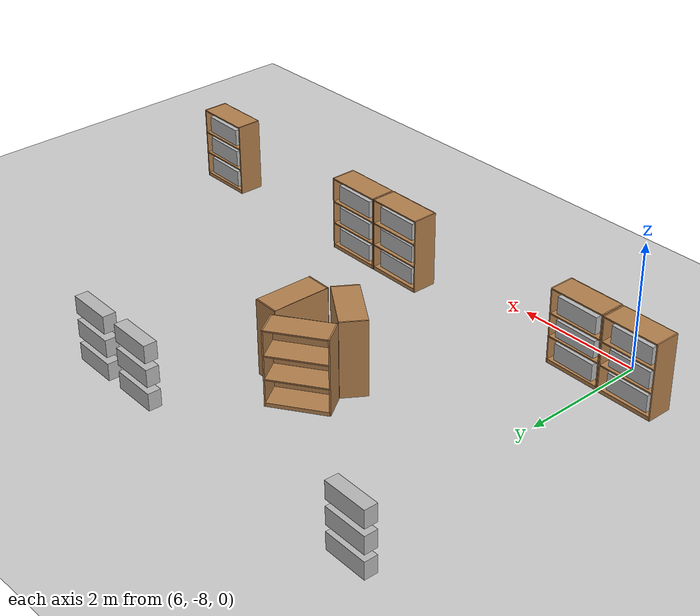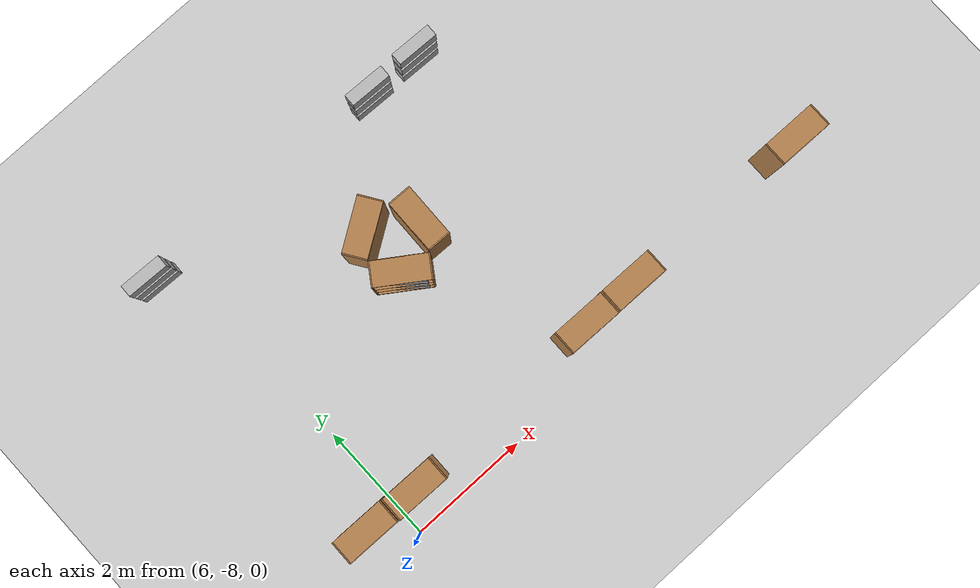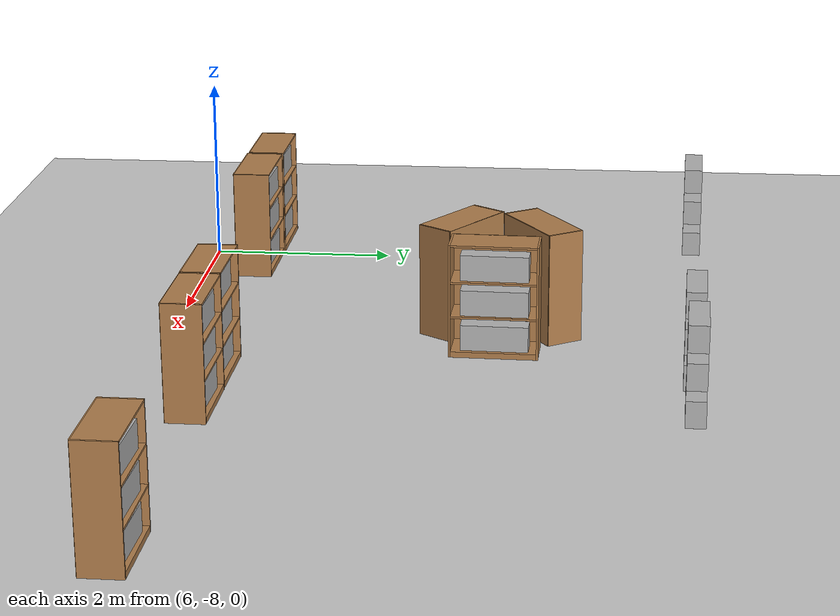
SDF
<sdf version="1.7">
 <world name="default">
  <model name="ground_plane">
   <static>1</static>
   <link name="link">
    <collision name="collision">
     <geometry><plane><normal>0 0 1</normal><size>100 100</size></plane></geometry>
     <surface><friction><ode><mu>100</mu><mu2>50</mu2></ode></friction></surface>
    </collision>
    <visual name="visual">
     <cast_shadows>0</cast_shadows>
     <geometry><plane><normal>0 0 1</normal><size>100 100</size></plane></geometry>
     <material>
      <script><uri>file://media/materials/scripts/gazebo.material</uri><name>Gazebo/Grey</name></script>
     </material>
    </visual>
   </link>
  </model>
  <model name="bookshelf_clone_clone">
   <static>1</static>
   <link name="link">
    <inertial><mass>1</mass></inertial>
    <collision name="back">
     <pose>0 0.005 0.6 0 -0 0</pose>
     <geometry><box><size>0.9 0.01 1.2</size></box></geometry>
    </collision>
    <visual name="visual1">
     <pose>0 0.005 0.6 0 -0 0</pose>
     <geometry><box><size>0.9 0.01 1.2</size></box></geometry>
     <material>
      <script><uri>file://media/materials/scripts/gazebo.material</uri><name>Gazebo/Wood</name></script>
     </material>
    </visual>
    <collision name="left_side">
     <pose>0.45 -0.195 0.6 0 -0 0</pose>
     <geometry><box><size>0.02 0.4 1.2</size></box></geometry>
    </collision>
    <visual name="visual2">
     <pose>0.45 -0.195 0.6 0 -0 0</pose>
     <geometry><box><size>0.02 0.4 1.2</size></box></geometry>
     <material>
      <script><uri>file://media/materials/scripts/gazebo.material</uri><name>Gazebo/Wood</name></script>
     </material>
    </visual>
    <collision name="right_side">
     <pose>-0.45 -0.195 0.6 0 -0 0</pose>
     <geometry><box><size>0.02 0.4 1.2</size></box></geometry>
    </collision>
    <visual name="visual3">
     <pose>-0.45 -0.195 0.6 0 -0 0</pose>
     <geometry><box><size>0.02 0.4 1.2</size></box></geometry>
     <material>
      <script><uri>file://media/materials/scripts/gazebo.material</uri><name>Gazebo/Wood</name></script>
     </material>
    </visual>
    <collision name="bottom">
     <pose>0 -0.195 0.03 0 -0 0</pose>
     <geometry><box><size>0.88 0.4 0.06</size></box></geometry>
    </collision>
    <visual name="visual4">
     <pose>0 -0.195 0.03 0 -0 0</pose>
     <geometry><box><size>0.88 0.4 0.06</size></box></geometry>
     <material>
      <script><uri>file://media/materials/scripts/gazebo.material</uri><name>Gazebo/Wood</name></script>
     </material>
    </visual>
    <collision name="top">
     <pose>0 -0.195 1.19 0 -0 0</pose>
     <geometry><box><size>0.88 0.4 0.02</size></box></geometry>
    </collision>
    <visual name="visual5">
     <pose>0 -0.195 1.19 0 -0 0</pose>
     <geometry><box><size>0.88 0.4 0.02</size></box></geometry>
     <material>
      <script><uri>file://media/materials/scripts/gazebo.material</uri><name>Gazebo/Wood</name></script>
     </material>
    </visual>
    <collision name="low_shelf">
     <pose>0 -0.195 0.43 0 -0 0</pose>
     <geometry><box><size>0.88 0.4 0.02</size></box></geometry>
    </collision>
    <visual name="visual6">
     <pose>0 -0.195 0.43 0 -0 0</pose>
     <geometry><box><size>0.88 0.4 0.02</size></box></geometry>
     <material>
      <script><uri>file://media/materials/scripts/gazebo.material</uri><name>Gazebo/Wood</name></script>
     </material>
    </visual>
    <collision name="high_shelf">
     <pose>0 -0.195 0.8 0 -0 0</pose>
     <geometry><box><size>0.88 0.4 0.02</size></box></geometry>
    </collision>
    <visual name="visual7">
     <pose>0 -0.195 0.8 0 -0 0</pose>
     <geometry><box><size>0.88 0.4 0.02</size></box></geometry>
     <material>
      <script><uri>file://media/materials/scripts/gazebo.material</uri><name>Gazebo/Wood</name></script>
     </material>
    </visual>
   </link>
   <pose>5.52396 -7.61033 0.012624 0 -0 3.13078</pose>
  </model>
  <model name="bookshelf_clone_clone_clone">
   <static>1</static>
   <link name="link">
    <inertial><mass>1</mass></inertial>
    <collision name="back">
     <pose>0 0.005 0.6 0 -0 0</pose>
     <geometry><box><size>0.9 0.01 1.2</size></box></geometry>
    </collision>
    <visual name="visual1">
     <pose>0 0.005 0.6 0 -0 0</pose>
     <geometry><box><size>0.9 0.01 1.2</size></box></geometry>
     <material>
      <script><uri>file://media/materials/scripts/gazebo.material</uri><name>Gazebo/Wood</name></script>
     </material>
    </visual>
    <collision name="left_side">
     <pose>0.45 -0.195 0.6 0 -0 0</pose>
     <geometry><box><size>0.02 0.4 1.2</size></box></geometry>
    </collision>
    <visual name="visual2">
     <pose>0.45 -0.195 0.6 0 -0 0</pose>
     <geometry><box><size>0.02 0.4 1.2</size></box></geometry>
     <material>
      <script><uri>file://media/materials/scripts/gazebo.material</uri><name>Gazebo/Wood</name></script>
     </material>
    </visual>
    <collision name="right_side">
     <pose>-0.45 -0.195 0.6 0 -0 0</pose>
     <geometry><box><size>0.02 0.4 1.2</size></box></geometry>
    </collision>
    <visual name="visual3">
     <pose>-0.45 -0.195 0.6 0 -0 0</pose>
     <geometry><box><size>0.02 0.4 1.2</size></box></geometry>
     <material>
      <script><uri>file://media/materials/scripts/gazebo.material</uri><name>Gazebo/Wood</name></script>
     </material>
    </visual>
    <collision name="bottom">
     <pose>0 -0.195 0.03 0 -0 0</pose>
     <geometry><box><size>0.88 0.4 0.06</size></box></geometry>
    </collision>
    <visual name="visual4">
     <pose>0 -0.195 0.03 0 -0 0</pose>
     <geometry><box><size>0.88 0.4 0.06</size></box></geometry>
     <material>
      <script><uri>file://media/materials/scripts/gazebo.material</uri><name>Gazebo/Wood</name></script>
     </material>
    </visual>
    <collision name="top">
     <pose>0 -0.195 1.19 0 -0 0</pose>
     <geometry><box><size>0.88 0.4 0.02</size></box></geometry>
    </collision>
    <visual name="visual5">
     <pose>0 -0.195 1.19 0 -0 0</pose>
     <geometry><box><size>0.88 0.4 0.02</size></box></geometry>
     <material>
      <script><uri>file://media/materials/scripts/gazebo.material</uri><name>Gazebo/Wood</name></script>
     </material>
    </visual>
    <collision name="low_shelf">
     <pose>0 -0.195 0.43 0 -0 0</pose>
     <geometry><box><size>0.88 0.4 0.02</size></box></geometry>
    </collision>
    <visual name="visual6">
     <pose>0 -0.195 0.43 0 -0 0</pose>
     <geometry><box><size>0.88 0.4 0.02</size></box></geometry>
     <material>
      <script><uri>file://media/materials/scripts/gazebo.material</uri><name>Gazebo/Wood</name></script>
     </material>
    </visual>
    <collision name="high_shelf">
     <pose>0 -0.195 0.8 0 -0 0</pose>
     <geometry><box><size>0.88 0.4 0.02</size></box></geometry>
    </collision>
    <visual name="visual7">
     <pose>0 -0.195 0.8 0 -0 0</pose>
     <geometry><box><size>0.88 0.4 0.02</size></box></geometry>
     <material>
      <script><uri>file://media/materials/scripts/gazebo.material</uri><name>Gazebo/Wood</name></script>
     </material>
    </visual>
   </link>
   <pose>6.45684 -7.62988 0.012624 0 -0 3.13078</pose>
  </model>
  <model name="bookshelf_clone_clone_clone_0">
   <static>1</static>
   <link name="link">
    <inertial><mass>1</mass></inertial>
    <collision name="back">
     <pose>0 0.005 0.6 0 -0 0</pose>
     <geometry><box><size>0.9 0.01 1.2</size></box></geometry>
    </collision>
    <visual name="visual1">
     <pose>0 0.005 0.6 0 -0 0</pose>
     <geometry><box><size>0.9 0.01 1.2</size></box></geometry>
     <material>
      <script><uri>file://media/materials/scripts/gazebo.material</uri><name>Gazebo/Wood</name></script>
     </material>
    </visual>
    <collision name="left_side">
     <pose>0.45 -0.195 0.6 0 -0 0</pose>
     <geometry><box><size>0.02 0.4 1.2</size></box></geometry>
    </collision>
    <visual name="visual2">
     <pose>0.45 -0.195 0.6 0 -0 0</pose>
     <geometry><box><size>0.02 0.4 1.2</size></box></geometry>
     <material>
      <script><uri>file://media/materials/scripts/gazebo.material</uri><name>Gazebo/Wood</name></script>
     </material>
    </visual>
    <collision name="right_side">
     <pose>-0.45 -0.195 0.6 0 -0 0</pose>
     <geometry><box><size>0.02 0.4 1.2</size></box></geometry>
    </collision>
    <visual name="visual3">
     <pose>-0.45 -0.195 0.6 0 -0 0</pose>
     <geometry><box><size>0.02 0.4 1.2</size></box></geometry>
     <material>
      <script><uri>file://media/materials/scripts/gazebo.material</uri><name>Gazebo/Wood</name></script>
     </material>
    </visual>
    <collision name="bottom">
     <pose>0 -0.195 0.03 0 -0 0</pose>
     <geometry><box><size>0.88 0.4 0.06</size></box></geometry>
    </collision>
    <visual name="visual4">
     <pose>0 -0.195 0.03 0 -0 0</pose>
     <geometry><box><size>0.88 0.4 0.06</size></box></geometry>
     <material>
      <script><uri>file://media/materials/scripts/gazebo.material</uri><name>Gazebo/Wood</name></script>
     </material>
    </visual>
    <collision name="top">
     <pose>0 -0.195 1.19 0 -0 0</pose>
     <geometry><box><size>0.88 0.4 0.02</size></box></geometry>
    </collision>
    <visual name="visual5">
     <pose>0 -0.195 1.19 0 -0 0</pose>
     <geometry><box><size>0.88 0.4 0.02</size></box></geometry>
     <material>
      <script><uri>file://media/materials/scripts/gazebo.material</uri><name>Gazebo/Wood</name></script>
     </material>
    </visual>
    <collision name="low_shelf">
     <pose>0 -0.195 0.43 0 -0 0</pose>
     <geometry><box><size>0.88 0.4 0.02</size></box></geometry>
    </collision>
    <visual name="visual6">
     <pose>0 -0.195 0.43 0 -0 0</pose>
     <geometry><box><size>0.88 0.4 0.02</size></box></geometry>
     <material>
      <script><uri>file://media/materials/scripts/gazebo.material</uri><name>Gazebo/Wood</name></script>
     </material>
    </visual>
    <collision name="high_shelf">
     <pose>0 -0.195 0.8 0 -0 0</pose>
     <geometry><box><size>0.88 0.4 0.02</size></box></geometry>
    </collision>
    <visual name="visual7">
     <pose>0 -0.195 0.8 0 -0 0</pose>
     <geometry><box><size>0.88 0.4 0.02</size></box></geometry>
     <material>
      <script><uri>file://media/materials/scripts/gazebo.material</uri><name>Gazebo/Wood</name></script>
     </material>
    </visual>
   </link>
   <pose>9.92381 -7.54197 0.012624 0 -0 3.13078</pose>
  </model>
  <model name="bookshelf_clone_clone_clone_1">
   <static>1</static>
   <link name="link">
    <inertial><mass>1</mass></inertial>
    <collision name="back">
     <pose>0 0.005 0.6 0 -0 0</pose>
     <geometry><box><size>0.9 0.01 1.2</size></box></geometry>
    </collision>
    <visual name="visual1">
     <pose>0 0.005 0.6 0 -0 0</pose>
     <geometry><box><size>0.9 0.01 1.2</size></box></geometry>
     <material>
      <script><uri>file://media/materials/scripts/gazebo.material</uri><name>Gazebo/Wood</name></script>
     </material>
    </visual>
    <collision name="left_side">
     <pose>0.45 -0.195 0.6 0 -0 0</pose>
     <geometry><box><size>0.02 0.4 1.2</size></box></geometry>
    </collision>
    <visual name="visual2">
     <pose>0.45 -0.195 0.6 0 -0 0</pose>
     <geometry><box><size>0.02 0.4 1.2</size></box></geometry>
     <material>
      <script><uri>file://media/materials/scripts/gazebo.material</uri><name>Gazebo/Wood</name></script>
     </material>
    </visual>
    <collision name="right_side">
     <pose>-0.45 -0.195 0.6 0 -0 0</pose>
     <geometry><box><size>0.02 0.4 1.2</size></box></geometry>
    </collision>
    <visual name="visual3">
     <pose>-0.45 -0.195 0.6 0 -0 0</pose>
     <geometry><box><size>0.02 0.4 1.2</size></box></geometry>
     <material>
      <script><uri>file://media/materials/scripts/gazebo.material</uri><name>Gazebo/Wood</name></script>
     </material>
    </visual>
    <collision name="bottom">
     <pose>0 -0.195 0.03 0 -0 0</pose>
     <geometry><box><size>0.88 0.4 0.06</size></box></geometry>
    </collision>
    <visual name="visual4">
     <pose>0 -0.195 0.03 0 -0 0</pose>
     <geometry><box><size>0.88 0.4 0.06</size></box></geometry>
     <material>
      <script><uri>file://media/materials/scripts/gazebo.material</uri><name>Gazebo/Wood</name></script>
     </material>
    </visual>
    <collision name="top">
     <pose>0 -0.195 1.19 0 -0 0</pose>
     <geometry><box><size>0.88 0.4 0.02</size></box></geometry>
    </collision>
    <visual name="visual5">
     <pose>0 -0.195 1.19 0 -0 0</pose>
     <geometry><box><size>0.88 0.4 0.02</size></box></geometry>
     <material>
      <script><uri>file://media/materials/scripts/gazebo.material</uri><name>Gazebo/Wood</name></script>
     </material>
    </visual>
    <collision name="low_shelf">
     <pose>0 -0.195 0.43 0 -0 0</pose>
     <geometry><box><size>0.88 0.4 0.02</size></box></geometry>
    </collision>
    <visual name="visual6">
     <pose>0 -0.195 0.43 0 -0 0</pose>
     <geometry><box><size>0.88 0.4 0.02</size></box></geometry>
     <material>
      <script><uri>file://media/materials/scripts/gazebo.material</uri><name>Gazebo/Wood</name></script>
     </material>
    </visual>
    <collision name="high_shelf">
     <pose>0 -0.195 0.8 0 -0 0</pose>
     <geometry><box><size>0.88 0.4 0.02</size></box></geometry>
    </collision>
    <visual name="visual7">
     <pose>0 -0.195 0.8 0 -0 0</pose>
     <geometry><box><size>0.88 0.4 0.02</size></box></geometry>
     <material>
      <script><uri>file://media/materials/scripts/gazebo.material</uri><name>Gazebo/Wood</name></script>
     </material>
    </visual>
   </link>
   <pose>10.8453 -7.5483 0.012624 0 -0 3.13078</pose>
  </model>
  <model name="bookshelf_clone_clone_clone_2">
   <static>1</static>
   <link name="link">
    <inertial><mass>1</mass></inertial>
    <collision name="back">
     <pose>0 0.005 0.6 0 -0 0</pose>
     <geometry><box><size>0.9 0.01 1.2</size></box></geometry>
    </collision>
    <visual name="visual1">
     <pose>0 0.005 0.6 0 -0 0</pose>
     <geometry><box><size>0.9 0.01 1.2</size></box></geometry>
     <material>
      <script><uri>file://media/materials/scripts/gazebo.material</uri><name>Gazebo/Wood</name></script>
     </material>
    </visual>
    <collision name="left_side">
     <pose>0.45 -0.195 0.6 0 -0 0</pose>
     <geometry><box><size>0.02 0.4 1.2</size></box></geometry>
    </collision>
    <visual name="visual2">
     <pose>0.45 -0.195 0.6 0 -0 0</pose>
     <geometry><box><size>0.02 0.4 1.2</size></box></geometry>
     <material>
      <script><uri>file://media/materials/scripts/gazebo.material</uri><name>Gazebo/Wood</name></script>
     </material>
    </visual>
    <collision name="right_side">
     <pose>-0.45 -0.195 0.6 0 -0 0</pose>
     <geometry><box><size>0.02 0.4 1.2</size></box></geometry>
    </collision>
    <visual name="visual3">
     <pose>-0.45 -0.195 0.6 0 -0 0</pose>
     <geometry><box><size>0.02 0.4 1.2</size></box></geometry>
     <material>
      <script><uri>file://media/materials/scripts/gazebo.material</uri><name>Gazebo/Wood</name></script>
     </material>
    </visual>
    <collision name="bottom">
     <pose>0 -0.195 0.03 0 -0 0</pose>
     <geometry><box><size>0.88 0.4 0.06</size></box></geometry>
    </collision>
    <visual name="visual4">
     <pose>0 -0.195 0.03 0 -0 0</pose>
     <geometry><box><size>0.88 0.4 0.06</size></box></geometry>
     <material>
      <script><uri>file://media/materials/scripts/gazebo.material</uri><name>Gazebo/Wood</name></script>
     </material>
    </visual>
    <collision name="top">
     <pose>0 -0.195 1.19 0 -0 0</pose>
     <geometry><box><size>0.88 0.4 0.02</size></box></geometry>
    </collision>
    <visual name="visual5">
     <pose>0 -0.195 1.19 0 -0 0</pose>
     <geometry><box><size>0.88 0.4 0.02</size></box></geometry>
     <material>
      <script><uri>file://media/materials/scripts/gazebo.material</uri><name>Gazebo/Wood</name></script>
     </material>
    </visual>
    <collision name="low_shelf">
     <pose>0 -0.195 0.43 0 -0 0</pose>
     <geometry><box><size>0.88 0.4 0.02</size></box></geometry>
    </collision>
    <visual name="visual6">
     <pose>0 -0.195 0.43 0 -0 0</pose>
     <geometry><box><size>0.88 0.4 0.02</size></box></geometry>
     <material>
      <script><uri>file://media/materials/scripts/gazebo.material</uri><name>Gazebo/Wood</name></script>
     </material>
    </visual>
    <collision name="high_shelf">
     <pose>0 -0.195 0.8 0 -0 0</pose>
     <geometry><box><size>0.88 0.4 0.02</size></box></geometry>
    </collision>
    <visual name="visual7">
     <pose>0 -0.195 0.8 0 -0 0</pose>
     <geometry><box><size>0.88 0.4 0.02</size></box></geometry>
     <material>
      <script><uri>file://media/materials/scripts/gazebo.material</uri><name>Gazebo/Wood</name></script>
     </material>
    </visual>
   </link>
   <pose>14.1071 -7.58237 0.012624 0 -0 3.13078</pose>
  </model>
  <model name="bookshelf_clone_clone_clone_1_clone_0_clone_2_clone_clone_clone">
   <static>1</static>
   <link name="link">
    <inertial><mass>1</mass></inertial>
    <collision name="back">
     <pose>0 0.005 0.6 0 -0 0</pose>
     <geometry><box><size>0.9 0.01 1.2</size></box></geometry>
    </collision>
    <visual name="visual1">
     <pose>0 0.005 0.6 0 -0 0</pose>
     <geometry><box><size>0.9 0.01 1.2</size></box></geometry>
     <material>
      <script><uri>file://media/materials/scripts/gazebo.material</uri><name>Gazebo/Wood</name></script>
     </material>
    </visual>
    <collision name="left_side">
     <pose>0.45 -0.195 0.6 0 -0 0</pose>
     <geometry><box><size>0.02 0.4 1.2</size></box></geometry>
    </collision>
    <visual name="visual2">
     <pose>0.45 -0.195 0.6 0 -0 0</pose>
     <geometry><box><size>0.02 0.4 1.2</size></box></geometry>
     <material>
      <script><uri>file://media/materials/scripts/gazebo.material</uri><name>Gazebo/Wood</name></script>
     </material>
    </visual>
    <collision name="right_side">
     <pose>-0.45 -0.195 0.6 0 -0 0</pose>
     <geometry><box><size>0.02 0.4 1.2</size></box></geometry>
    </collision>
    <visual name="visual3">
     <pose>-0.45 -0.195 0.6 0 -0 0</pose>
     <geometry><box><size>0.02 0.4 1.2</size></box></geometry>
     <material>
      <script><uri>file://media/materials/scripts/gazebo.material</uri><name>Gazebo/Wood</name></script>
     </material>
    </visual>
    <collision name="bottom">
     <pose>0 -0.195 0.03 0 -0 0</pose>
     <geometry><box><size>0.88 0.4 0.06</size></box></geometry>
    </collision>
    <visual name="visual4">
     <pose>0 -0.195 0.03 0 -0 0</pose>
     <geometry><box><size>0.88 0.4 0.06</size></box></geometry>
     <material>
      <script><uri>file://media/materials/scripts/gazebo.material</uri><name>Gazebo/Wood</name></script>
     </material>
    </visual>
    <collision name="top">
     <pose>0 -0.195 1.19 0 -0 0</pose>
     <geometry><box><size>0.88 0.4 0.02</size></box></geometry>
    </collision>
    <visual name="visual5">
     <pose>0 -0.195 1.19 0 -0 0</pose>
     <geometry><box><size>0.88 0.4 0.02</size></box></geometry>
     <material>
      <script><uri>file://media/materials/scripts/gazebo.material</uri><name>Gazebo/Wood</name></script>
     </material>
    </visual>
    <collision name="low_shelf">
     <pose>0 -0.195 0.43 0 -0 0</pose>
     <geometry><box><size>0.88 0.4 0.02</size></box></geometry>
    </collision>
    <visual name="visual6">
     <pose>0 -0.195 0.43 0 -0 0</pose>
     <geometry><box><size>0.88 0.4 0.02</size></box></geometry>
     <material>
      <script><uri>file://media/materials/scripts/gazebo.material</uri><name>Gazebo/Wood</name></script>
     </material>
    </visual>
    <collision name="high_shelf">
     <pose>0 -0.195 0.8 0 -0 0</pose>
     <geometry><box><size>0.88 0.4 0.02</size></box></geometry>
    </collision>
    <visual name="visual7">
     <pose>0 -0.195 0.8 0 -0 0</pose>
     <geometry><box><size>0.88 0.4 0.02</size></box></geometry>
     <material>
      <script><uri>file://media/materials/scripts/gazebo.material</uri><name>Gazebo/Wood</name></script>
     </material>
    </visual>
   </link>
   <pose>8.94503 -4.55663 0.012624 0 -0 1.54598</pose>
  </model>
  <model name="bookshelf_clone_clone_clone_1_clone_0_clone_1_clone_clone_clone">
   <static>1</static>
   <link name="link">
    <inertial><mass>1</mass></inertial>
    <collision name="back">
     <pose>0 0.005 0.6 0 -0 0</pose>
     <geometry><box><size>0.9 0.01 1.2</size></box></geometry>
    </collision>
    <visual name="visual1">
     <pose>0 0.005 0.6 0 -0 0</pose>
     <geometry><box><size>0.9 0.01 1.2</size></box></geometry>
     <material>
      <script><uri>file://media/materials/scripts/gazebo.material</uri><name>Gazebo/Wood</name></script>
     </material>
    </visual>
    <collision name="left_side">
     <pose>0.45 -0.195 0.6 0 -0 0</pose>
     <geometry><box><size>0.02 0.4 1.2</size></box></geometry>
    </collision>
    <visual name="visual2">
     <pose>0.45 -0.195 0.6 0 -0 0</pose>
     <geometry><box><size>0.02 0.4 1.2</size></box></geometry>
     <material>
      <script><uri>file://media/materials/scripts/gazebo.material</uri><name>Gazebo/Wood</name></script>
     </material>
    </visual>
    <collision name="right_side">
     <pose>-0.45 -0.195 0.6 0 -0 0</pose>
     <geometry><box><size>0.02 0.4 1.2</size></box></geometry>
    </collision>
    <visual name="visual3">
     <pose>-0.45 -0.195 0.6 0 -0 0</pose>
     <geometry><box><size>0.02 0.4 1.2</size></box></geometry>
     <material>
      <script><uri>file://media/materials/scripts/gazebo.material</uri><name>Gazebo/Wood</name></script>
     </material>
    </visual>
    <collision name="bottom">
     <pose>0 -0.195 0.03 0 -0 0</pose>
     <geometry><box><size>0.88 0.4 0.06</size></box></geometry>
    </collision>
    <visual name="visual4">
     <pose>0 -0.195 0.03 0 -0 0</pose>
     <geometry><box><size>0.88 0.4 0.06</size></box></geometry>
     <material>
      <script><uri>file://media/materials/scripts/gazebo.material</uri><name>Gazebo/Wood</name></script>
     </material>
    </visual>
    <collision name="top">
     <pose>0 -0.195 1.19 0 -0 0</pose>
     <geometry><box><size>0.88 0.4 0.02</size></box></geometry>
    </collision>
    <visual name="visual5">
     <pose>0 -0.195 1.19 0 -0 0</pose>
     <geometry><box><size>0.88 0.4 0.02</size></box></geometry>
     <material>
      <script><uri>file://media/materials/scripts/gazebo.material</uri><name>Gazebo/Wood</name></script>
     </material>
    </visual>
    <collision name="low_shelf">
     <pose>0 -0.195 0.43 0 -0 0</pose>
     <geometry><box><size>0.88 0.4 0.02</size></box></geometry>
    </collision>
    <visual name="visual6">
     <pose>0 -0.195 0.43 0 -0 0</pose>
     <geometry><box><size>0.88 0.4 0.02</size></box></geometry>
     <material>
      <script><uri>file://media/materials/scripts/gazebo.material</uri><name>Gazebo/Wood</name></script>
     </material>
    </visual>
    <collision name="high_shelf">
     <pose>0 -0.195 0.8 0 -0 0</pose>
     <geometry><box><size>0.88 0.4 0.02</size></box></geometry>
    </collision>
    <visual name="visual7">
     <pose>0 -0.195 0.8 0 -0 0</pose>
     <geometry><box><size>0.88 0.4 0.02</size></box></geometry>
     <material>
      <script><uri>file://media/materials/scripts/gazebo.material</uri><name>Gazebo/Wood</name></script>
     </material>
    </visual>
   </link>
   <pose>8.53687 -4.78938 0.029212 0 0 -0.598378</pose>
  </model>
  <model name="bookshelf_clone_clone_clone_1_clone_0_clone_3_clone_clone_clone">
   <static>1</static>
   <link name="link">
    <inertial><mass>1</mass></inertial>
    <collision name="back">
     <pose>0 0.005 0.6 0 -0 0</pose>
     <geometry><box><size>0.9 0.01 1.2</size></box></geometry>
    </collision>
    <visual name="visual1">
     <pose>0 0.005 0.6 0 -0 0</pose>
     <geometry><box><size>0.9 0.01 1.2</size></box></geometry>
     <material>
      <script><uri>file://media/materials/scripts/gazebo.material</uri><name>Gazebo/Wood</name></script>
     </material>
    </visual>
    <collision name="left_side">
     <pose>0.45 -0.195 0.6 0 -0 0</pose>
     <geometry><box><size>0.02 0.4 1.2</size></box></geometry>
    </collision>
    <visual name="visual2">
     <pose>0.45 -0.195 0.6 0 -0 0</pose>
     <geometry><box><size>0.02 0.4 1.2</size></box></geometry>
     <material>
      <script><uri>file://media/materials/scripts/gazebo.material</uri><name>Gazebo/Wood</name></script>
     </material>
    </visual>
    <collision name="right_side">
     <pose>-0.45 -0.195 0.6 0 -0 0</pose>
     <geometry><box><size>0.02 0.4 1.2</size></box></geometry>
    </collision>
    <visual name="visual3">
     <pose>-0.45 -0.195 0.6 0 -0 0</pose>
     <geometry><box><size>0.02 0.4 1.2</size></box></geometry>
     <material>
      <script><uri>file://media/materials/scripts/gazebo.material</uri><name>Gazebo/Wood</name></script>
     </material>
    </visual>
    <collision name="bottom">
     <pose>0 -0.195 0.03 0 -0 0</pose>
     <geometry><box><size>0.88 0.4 0.06</size></box></geometry>
    </collision>
    <visual name="visual4">
     <pose>0 -0.195 0.03 0 -0 0</pose>
     <geometry><box><size>0.88 0.4 0.06</size></box></geometry>
     <material>
      <script><uri>file://media/materials/scripts/gazebo.material</uri><name>Gazebo/Wood</name></script>
     </material>
    </visual>
    <collision name="top">
     <pose>0 -0.195 1.19 0 -0 0</pose>
     <geometry><box><size>0.88 0.4 0.02</size></box></geometry>
    </collision>
    <visual name="visual5">
     <pose>0 -0.195 1.19 0 -0 0</pose>
     <geometry><box><size>0.88 0.4 0.02</size></box></geometry>
     <material>
      <script><uri>file://media/materials/scripts/gazebo.material</uri><name>Gazebo/Wood</name></script>
     </material>
    </visual>
    <collision name="low_shelf">
     <pose>0 -0.195 0.43 0 -0 0</pose>
     <geometry><box><size>0.88 0.4 0.02</size></box></geometry>
    </collision>
    <visual name="visual6">
     <pose>0 -0.195 0.43 0 -0 0</pose>
     <geometry><box><size>0.88 0.4 0.02</size></box></geometry>
     <material>
      <script><uri>file://media/materials/scripts/gazebo.material</uri><name>Gazebo/Wood</name></script>
     </material>
    </visual>
    <collision name="high_shelf">
     <pose>0 -0.195 0.8 0 -0 0</pose>
     <geometry><box><size>0.88 0.4 0.02</size></box></geometry>
    </collision>
    <visual name="visual7">
     <pose>0 -0.195 0.8 0 -0 0</pose>
     <geometry><box><size>0.88 0.4 0.02</size></box></geometry>
     <material>
      <script><uri>file://media/materials/scripts/gazebo.material</uri><name>Gazebo/Wood</name></script>
     </material>
    </visual>
   </link>
   <pose>8.54265 -4.26445 0.012624 0 0 -2.55928</pose>
  </model>
  <model name="book1.xacro_clone_11">
   <link name="base_footprint">
    <inertial>
     <pose>1 1 1.5 0 -0 0</pose>
     <mass>6</mass>
     <inertia><ixx>0.7503</ixx><ixy>0</ixy><ixz>0</ixz><iyy>0.7503</iyy><iyz>0</iyz><izz>0.003</izz></inertia>
    </inertial>
    <collision name="base_footprint_fixed_joint_lump__base_link_collision">
     <pose>1 1 1 0 -0 0</pose>
     <geometry><box><size>0.7 0.2 0.27</size></box></geometry>
    </collision>
    <collision name="base_footprint_fixed_joint_lump__book_link_2_collision_1">
     <pose>1 1 1.375 0 -0 0</pose>
     <geometry><box><size>0.7 0.2 0.27</size></box></geometry>
    </collision>
    <collision name="base_footprint_fixed_joint_lump__book_link_3_collision_2">
     <pose>1 1 1.75 0 -0 0</pose>
     <geometry><box><size>0.7 0.2 0.27</size></box></geometry>
    </collision>
    <visual name="base_footprint_fixed_joint_lump__base_link_visual">
     <pose>1 1 1 0 -0 0</pose>
     <geometry><box><size>0.7 0.2 0.27</size></box></geometry>
    </visual>
    <visual name="base_footprint_fixed_joint_lump__book_link_2_visual_1">
     <pose>1 1 1.375 0 -0 0</pose>
     <geometry><box><size>0.7 0.2 0.27</size></box></geometry>
    </visual>
    <visual name="base_footprint_fixed_joint_lump__book_link_3_visual_2">
     <pose>1 1 1.75 0 -0 0</pose>
     <geometry><box><size>0.7 0.2 0.27</size></box></geometry>
    </visual>
   </link>
   <frame name="book_joint_2" attached_to="base_link"><pose>0 0 0.375 0 -0 0</pose></frame>
   <frame name="book_link_2" attached_to="book_joint_2"/>
   <frame name="book_joint_3" attached_to="base_link"><pose>0 0 0.75 0 -0 0</pose></frame>
   <frame name="book_link_3" attached_to="book_joint_3"/>
   <frame name="base_joint" attached_to="base_footprint"><pose>1 1 1 0 -0 0</pose></frame>
   <frame name="base_link" attached_to="base_joint"/>
   <pose>4.4887 -8.33497 -0.787376 -0 -0 -0.03072</pose>
  </model>
  <model name="book1.xacro_clone_12">
   <link name="base_footprint">
    <inertial>
     <pose>1 1 1.5 0 -0 0</pose>
     <mass>6</mass>
     <inertia><ixx>0.7503</ixx><ixy>0</ixy><ixz>0</ixz><iyy>0.7503</iyy><iyz>0</iyz><izz>0.003</izz></inertia>
    </inertial>
    <collision name="base_footprint_fixed_joint_lump__base_link_collision">
     <pose>1 1 1 0 -0 0</pose>
     <geometry><box><size>0.7 0.2 0.27</size></box></geometry>
    </collision>
    <collision name="base_footprint_fixed_joint_lump__book_link_2_collision_1">
     <pose>1 1 1.375 0 -0 0</pose>
     <geometry><box><size>0.7 0.2 0.27</size></box></geometry>
    </collision>
    <collision name="base_footprint_fixed_joint_lump__book_link_3_collision_2">
     <pose>1 1 1.75 0 -0 0</pose>
     <geometry><box><size>0.7 0.2 0.27</size></box></geometry>
    </collision>
    <visual name="base_footprint_fixed_joint_lump__base_link_visual">
     <pose>1 1 1 0 -0 0</pose>
     <geometry><box><size>0.7 0.2 0.27</size></box></geometry>
    </visual>
    <visual name="base_footprint_fixed_joint_lump__book_link_2_visual_1">
     <pose>1 1 1.375 0 -0 0</pose>
     <geometry><box><size>0.7 0.2 0.27</size></box></geometry>
    </visual>
    <visual name="base_footprint_fixed_joint_lump__book_link_3_visual_2">
     <pose>1 1 1.75 0 -0 0</pose>
     <geometry><box><size>0.7 0.2 0.27</size></box></geometry>
    </visual>
   </link>
   <frame name="book_joint_2" attached_to="base_link"><pose>0 0 0.375 0 -0 0</pose></frame>
   <frame name="book_link_2" attached_to="book_joint_2"/>
   <frame name="book_joint_3" attached_to="base_link"><pose>0 0 0.75 0 -0 0</pose></frame>
   <frame name="book_link_3" attached_to="book_joint_3"/>
   <frame name="base_joint" attached_to="base_footprint"><pose>1 1 1 0 -0 0</pose></frame>
   <frame name="base_link" attached_to="base_joint"/>
   <pose>5.44529 -8.34389 -0.787376 -0 -0 -0.03072</pose>
  </model>
  <model name="book1.xacro_clone_13">
   <link name="base_footprint">
    <inertial>
     <pose>1 1 1.5 0 -0 0</pose>
     <mass>6</mass>
     <inertia><ixx>0.7503</ixx><ixy>0</ixy><ixz>0</ixz><iyy>0.7503</iyy><iyz>0</iyz><izz>0.003</izz></inertia>
    </inertial>
    <collision name="base_footprint_fixed_joint_lump__base_link_collision">
     <pose>1 1 1 0 -0 0</pose>
     <geometry><box><size>0.7 0.2 0.27</size></box></geometry>
    </collision>
    <collision name="base_footprint_fixed_joint_lump__book_link_2_collision_1">
     <pose>1 1 1.375 0 -0 0</pose>
     <geometry><box><size>0.7 0.2 0.27</size></box></geometry>
    </collision>
    <collision name="base_footprint_fixed_joint_lump__book_link_3_collision_2">
     <pose>1 1 1.75 0 -0 0</pose>
     <geometry><box><size>0.7 0.2 0.27</size></box></geometry>
    </collision>
    <visual name="base_footprint_fixed_joint_lump__base_link_visual">
     <pose>1 1 1 0 -0 0</pose>
     <geometry><box><size>0.7 0.2 0.27</size></box></geometry>
    </visual>
    <visual name="base_footprint_fixed_joint_lump__book_link_2_visual_1">
     <pose>1 1 1.375 0 -0 0</pose>
     <geometry><box><size>0.7 0.2 0.27</size></box></geometry>
    </visual>
    <visual name="base_footprint_fixed_joint_lump__book_link_3_visual_2">
     <pose>1 1 1.75 0 -0 0</pose>
     <geometry><box><size>0.7 0.2 0.27</size></box></geometry>
    </visual>
   </link>
   <frame name="book_joint_2" attached_to="base_link"><pose>0 0 0.375 0 -0 0</pose></frame>
   <frame name="book_link_2" attached_to="book_joint_2"/>
   <frame name="book_joint_3" attached_to="base_link"><pose>0 0 0.75 0 -0 0</pose></frame>
   <frame name="book_link_3" attached_to="book_joint_3"/>
   <frame name="base_joint" attached_to="base_footprint"><pose>1 1 1 0 -0 0</pose></frame>
   <frame name="base_link" attached_to="base_joint"/>
   <pose>9.83832 -8.27295 -0.787376 0 0 -0.030721</pose>
  </model>
  <model name="book1.xacro_clone_14">
   <link name="base_footprint">
    <inertial>
     <pose>1 1 1.5 0 -0 0</pose>
     <mass>6</mass>
     <inertia><ixx>0.7503</ixx><ixy>0</ixy><ixz>0</ixz><iyy>0.7503</iyy><iyz>0</iyz><izz>0.003</izz></inertia>
    </inertial>
    <collision name="base_footprint_fixed_joint_lump__base_link_collision">
     <pose>1 1 1 0 -0 0</pose>
     <geometry><box><size>0.7 0.2 0.27</size></box></geometry>
    </collision>
    <collision name="base_footprint_fixed_joint_lump__book_link_2_collision_1">
     <pose>1 1 1.375 0 -0 0</pose>
     <geometry><box><size>0.7 0.2 0.27</size></box></geometry>
    </collision>
    <collision name="base_footprint_fixed_joint_lump__book_link_3_collision_2">
     <pose>1 1 1.75 0 -0 0</pose>
     <geometry><box><size>0.7 0.2 0.27</size></box></geometry>
    </collision>
    <visual name="base_footprint_fixed_joint_lump__base_link_visual">
     <pose>1 1 1 0 -0 0</pose>
     <geometry><box><size>0.7 0.2 0.27</size></box></geometry>
    </visual>
    <visual name="base_footprint_fixed_joint_lump__book_link_2_visual_1">
     <pose>1 1 1.375 0 -0 0</pose>
     <geometry><box><size>0.7 0.2 0.27</size></box></geometry>
    </visual>
    <visual name="base_footprint_fixed_joint_lump__book_link_3_visual_2">
     <pose>1 1 1.75 0 -0 0</pose>
     <geometry><box><size>0.7 0.2 0.27</size></box></geometry>
    </visual>
   </link>
   <frame name="book_joint_2" attached_to="base_link"><pose>0 0 0.375 0 -0 0</pose></frame>
   <frame name="book_link_2" attached_to="book_joint_2"/>
   <frame name="book_joint_3" attached_to="base_link"><pose>0 0 0.75 0 -0 0</pose></frame>
   <frame name="book_link_3" attached_to="book_joint_3"/>
   <frame name="base_joint" attached_to="base_footprint"><pose>1 1 1 0 -0 0</pose></frame>
   <frame name="base_link" attached_to="base_joint"/>
   <pose>8.91465 -8.27768 -0.787376 0 0 -0.030721</pose>
  </model>
  <model name="book1.xacro_clone_15">
   <link name="base_footprint">
    <inertial>
     <pose>1 1 1.5 0 -0 0</pose>
     <mass>6</mass>
     <inertia><ixx>0.7503</ixx><ixy>0</ixy><ixz>0</ixz><iyy>0.7503</iyy><iyz>0</iyz><izz>0.003</izz></inertia>
    </inertial>
    <collision name="base_footprint_fixed_joint_lump__base_link_collision">
     <pose>1 1 1 0 -0 0</pose>
     <geometry><box><size>0.7 0.2 0.27</size></box></geometry>
    </collision>
    <collision name="base_footprint_fixed_joint_lump__book_link_2_collision_1">
     <pose>1 1 1.375 0 -0 0</pose>
     <geometry><box><size>0.7 0.2 0.27</size></box></geometry>
    </collision>
    <collision name="base_footprint_fixed_joint_lump__book_link_3_collision_2">
     <pose>1 1 1.75 0 -0 0</pose>
     <geometry><box><size>0.7 0.2 0.27</size></box></geometry>
    </collision>
    <visual name="base_footprint_fixed_joint_lump__base_link_visual">
     <pose>1 1 1 0 -0 0</pose>
     <geometry><box><size>0.7 0.2 0.27</size></box></geometry>
    </visual>
    <visual name="base_footprint_fixed_joint_lump__book_link_2_visual_1">
     <pose>1 1 1.375 0 -0 0</pose>
     <geometry><box><size>0.7 0.2 0.27</size></box></geometry>
    </visual>
    <visual name="base_footprint_fixed_joint_lump__book_link_3_visual_2">
     <pose>1 1 1.75 0 -0 0</pose>
     <geometry><box><size>0.7 0.2 0.27</size></box></geometry>
    </visual>
   </link>
   <frame name="book_joint_2" attached_to="base_link"><pose>0 0 0.375 0 -0 0</pose></frame>
   <frame name="book_link_2" attached_to="book_joint_2"/>
   <frame name="book_joint_3" attached_to="base_link"><pose>0 0 0.75 0 -0 0</pose></frame>
   <frame name="book_link_3" attached_to="book_joint_3"/>
   <frame name="base_joint" attached_to="base_footprint"><pose>1 1 1 0 -0 0</pose></frame>
   <frame name="base_link" attached_to="base_joint"/>
   <pose>13.1163 -8.29818 -0.787376 -0 -0 -0.03072</pose>
  </model>
  <model name="book1.xacro_clone_16">
   <link name="base_footprint">
    <inertial>
     <pose>1 1 1.5 0 -0 0</pose>
     <mass>6</mass>
     <inertia><ixx>0.7503</ixx><ixy>0</ixy><ixz>0</ixz><iyy>0.7503</iyy><iyz>0</iyz><izz>0.003</izz></inertia>
    </inertial>
    <collision name="base_footprint_fixed_joint_lump__base_link_collision">
     <pose>1 1 1 0 -0 0</pose>
     <geometry><box><size>0.7 0.2 0.27</size></box></geometry>
    </collision>
    <collision name="base_footprint_fixed_joint_lump__book_link_2_collision_1">
     <pose>1 1 1.375 0 -0 0</pose>
     <geometry><box><size>0.7 0.2 0.27</size></box></geometry>
    </collision>
    <collision name="base_footprint_fixed_joint_lump__book_link_3_collision_2">
     <pose>1 1 1.75 0 -0 0</pose>
     <geometry><box><size>0.7 0.2 0.27</size></box></geometry>
    </collision>
    <visual name="base_footprint_fixed_joint_lump__base_link_visual">
     <pose>1 1 1 0 -0 0</pose>
     <geometry><box><size>0.7 0.2 0.27</size></box></geometry>
    </visual>
    <visual name="base_footprint_fixed_joint_lump__book_link_2_visual_1">
     <pose>1 1 1.375 0 -0 0</pose>
     <geometry><box><size>0.7 0.2 0.27</size></box></geometry>
    </visual>
    <visual name="base_footprint_fixed_joint_lump__book_link_3_visual_2">
     <pose>1 1 1.75 0 -0 0</pose>
     <geometry><box><size>0.7 0.2 0.27</size></box></geometry>
    </visual>
   </link>
   <frame name="book_joint_2" attached_to="base_link"><pose>0 0 0.375 0 -0 0</pose></frame>
   <frame name="book_link_2" attached_to="book_joint_2"/>
   <frame name="book_joint_3" attached_to="base_link"><pose>0 0 0.75 0 -0 0</pose></frame>
   <frame name="book_link_3" attached_to="book_joint_3"/>
   <frame name="base_joint" attached_to="base_footprint"><pose>1 1 1 0 -0 0</pose></frame>
   <frame name="base_link" attached_to="base_joint"/>
   <pose>10.17 -5.58775 -0.787376 0 -0 1.53783</pose>
  </model>
  <model name="book1.xacro_clone_16_clone_clone_1_clone_1">
   <link name="base_footprint">
    <inertial>
     <pose>1 1 1.5 0 -0 0</pose>
     <mass>6</mass>
     <inertia><ixx>0.7503</ixx><ixy>0</ixy><ixz>0</ixz><iyy>0.7503</iyy><iyz>0</iyz><izz>0.003</izz></inertia>
    </inertial>
    <collision name="base_footprint_fixed_joint_lump__base_link_collision">
     <pose>1 1 1 0 -0 0</pose>
     <geometry><box><size>0.7 0.2 0.27</size></box></geometry>
    </collision>
    <collision name="base_footprint_fixed_joint_lump__book_link_2_collision_1">
     <pose>1 1 1.375 0 -0 0</pose>
     <geometry><box><size>0.7 0.2 0.27</size></box></geometry>
    </collision>
    <collision name="base_footprint_fixed_joint_lump__book_link_3_collision_2">
     <pose>1 1 1.75 0 -0 0</pose>
     <geometry><box><size>0.7 0.2 0.27</size></box></geometry>
    </collision>
    <visual name="base_footprint_fixed_joint_lump__base_link_visual">
     <pose>1 1 1 0 -0 0</pose>
     <geometry><box><size>0.7 0.2 0.27</size></box></geometry>
    </visual>
    <visual name="base_footprint_fixed_joint_lump__book_link_2_visual_1">
     <pose>1 1 1.375 0 -0 0</pose>
     <geometry><box><size>0.7 0.2 0.27</size></box></geometry>
    </visual>
    <visual name="base_footprint_fixed_joint_lump__book_link_3_visual_2">
     <pose>1 1 1.75 0 -0 0</pose>
     <geometry><box><size>0.7 0.2 0.27</size></box></geometry>
    </visual>
   </link>
   <frame name="book_joint_2" attached_to="base_link"><pose>0 0 0.375 0 -0 0</pose></frame>
   <frame name="book_link_2" attached_to="book_joint_2"/>
   <frame name="book_joint_3" attached_to="base_link"><pose>0 0 0.75 0 -0 0</pose></frame>
   <frame name="book_link_3" attached_to="book_joint_3"/>
   <frame name="base_joint" attached_to="base_footprint"><pose>1 1 1 0 -0 0</pose></frame>
   <frame name="base_link" attached_to="base_joint"/>
   <pose>9.80816 -4.85664 -0.770787 0 1e-06 2.47873</pose>
  </model>
  <model name="book1.xacro_clone_0_clone">
   <link name="base_footprint">
    <inertial>
     <pose>1 1 1.5 0 -0 0</pose>
     <mass>6</mass>
     <inertia><ixx>0.7503</ixx><ixy>0</ixy><ixz>0</ixz><iyy>0.7503</iyy><iyz>0</iyz><izz>0.003</izz></inertia>
    </inertial>
    <collision name="base_footprint_fixed_joint_lump__base_link_collision">
     <pose>1 1 1 0 -0 0</pose>
     <geometry><box><size>0.7 0.2 0.27</size></box></geometry>
    </collision>
    <collision name="base_footprint_fixed_joint_lump__book_link_2_collision_1">
     <pose>1 1 1.375 0 -0 0</pose>
     <geometry><box><size>0.7 0.2 0.27</size></box></geometry>
    </collision>
    <collision name="base_footprint_fixed_joint_lump__book_link_3_collision_2">
     <pose>1 1 1.75 0 -0 0</pose>
     <geometry><box><size>0.7 0.2 0.27</size></box></geometry>
    </collision>
    <visual name="base_footprint_fixed_joint_lump__base_link_visual">
     <pose>1 1 1 0 -0 0</pose>
     <geometry><box><size>0.7 0.2 0.27</size></box></geometry>
    </visual>
    <visual name="base_footprint_fixed_joint_lump__book_link_2_visual_1">
     <pose>1 1 1.375 0 -0 0</pose>
     <geometry><box><size>0.7 0.2 0.27</size></box></geometry>
    </visual>
    <visual name="base_footprint_fixed_joint_lump__book_link_3_visual_2">
     <pose>1 1 1.75 0 -0 0</pose>
     <geometry><box><size>0.7 0.2 0.27</size></box></geometry>
    </visual>
   </link>
   <frame name="book_joint_2" attached_to="base_link"><pose>0 0 0.375 0 -0 0</pose></frame>
   <frame name="book_link_2" attached_to="book_joint_2"/>
   <frame name="book_joint_3" attached_to="base_link"><pose>0 0 0.75 0 -0 0</pose></frame>
   <frame name="book_link_3" attached_to="book_joint_3"/>
   <frame name="base_joint" attached_to="base_footprint"><pose>1 1 1 0 -0 0</pose></frame>
   <frame name="base_link" attached_to="base_joint"/>
   <pose>4.54996 -3.43102 -0.787376 0 0 -0.030721</pose>
  </model>
  <model name="book1.xacro_clone_0_clone_1">
   <link name="base_footprint">
    <inertial>
     <pose>1 1 1.5 0 -0 0</pose>
     <mass>6</mass>
     <inertia><ixx>0.7503</ixx><ixy>0</ixy><ixz>0</ixz><iyy>0.7503</iyy><iyz>0</iyz><izz>0.003</izz></inertia>
    </inertial>
    <collision name="base_footprint_fixed_joint_lump__base_link_collision">
     <pose>1 1 1 0 -0 0</pose>
     <geometry><box><size>0.7 0.2 0.27</size></box></geometry>
    </collision>
    <collision name="base_footprint_fixed_joint_lump__book_link_2_collision_1">
     <pose>1 1 1.375 0 -0 0</pose>
     <geometry><box><size>0.7 0.2 0.27</size></box></geometry>
    </collision>
    <collision name="base_footprint_fixed_joint_lump__book_link_3_collision_2">
     <pose>1 1 1.75 0 -0 0</pose>
     <geometry><box><size>0.7 0.2 0.27</size></box></geometry>
    </collision>
    <visual name="base_footprint_fixed_joint_lump__base_link_visual">
     <pose>1 1 1 0 -0 0</pose>
     <geometry><box><size>0.7 0.2 0.27</size></box></geometry>
    </visual>
    <visual name="base_footprint_fixed_joint_lump__book_link_2_visual_1">
     <pose>1 1 1.375 0 -0 0</pose>
     <geometry><box><size>0.7 0.2 0.27</size></box></geometry>
    </visual>
    <visual name="base_footprint_fixed_joint_lump__book_link_3_visual_2">
     <pose>1 1 1.75 0 -0 0</pose>
     <geometry><box><size>0.7 0.2 0.27</size></box></geometry>
    </visual>
   </link>
   <frame name="book_joint_2" attached_to="base_link"><pose>0 0 0.375 0 -0 0</pose></frame>
   <frame name="book_link_2" attached_to="book_joint_2"/>
   <frame name="book_joint_3" attached_to="base_link"><pose>0 0 0.75 0 -0 0</pose></frame>
   <frame name="book_link_3" attached_to="book_joint_3"/>
   <frame name="base_joint" attached_to="base_footprint"><pose>1 1 1 0 -0 0</pose></frame>
   <frame name="base_link" attached_to="base_joint"/>
   <pose>8.87708 -3.51297 -0.787376 0 0 -0.030721</pose>
  </model>
  <model name="book1.xacro_clone_0_clone_2">
   <link name="base_footprint">
    <inertial>
     <pose>1 1 1.5 0 -0 0</pose>
     <mass>6</mass>
     <inertia><ixx>0.7503</ixx><ixy>0</ixy><ixz>0</ixz><iyy>0.7503</iyy><iyz>0</iyz><izz>0.003</izz></inertia>
    </inertial>
    <collision name="base_footprint_fixed_joint_lump__base_link_collision">
     <pose>1 1 1 0 -0 0</pose>
     <geometry><box><size>0.7 0.2 0.27</size></box></geometry>
    </collision>
    <collision name="base_footprint_fixed_joint_lump__book_link_2_collision_1">
     <pose>1 1 1.375 0 -0 0</pose>
     <geometry><box><size>0.7 0.2 0.27</size></box></geometry>
    </collision>
    <collision name="base_footprint_fixed_joint_lump__book_link_3_collision_2">
     <pose>1 1 1.75 0 -0 0</pose>
     <geometry><box><size>0.7 0.2 0.27</size></box></geometry>
    </collision>
    <visual name="base_footprint_fixed_joint_lump__base_link_visual">
     <pose>1 1 1 0 -0 0</pose>
     <geometry><box><size>0.7 0.2 0.27</size></box></geometry>
    </visual>
    <visual name="base_footprint_fixed_joint_lump__book_link_2_visual_1">
     <pose>1 1 1.375 0 -0 0</pose>
     <geometry><box><size>0.7 0.2 0.27</size></box></geometry>
    </visual>
    <visual name="base_footprint_fixed_joint_lump__book_link_3_visual_2">
     <pose>1 1 1.75 0 -0 0</pose>
     <geometry><box><size>0.7 0.2 0.27</size></box></geometry>
    </visual>
   </link>
   <frame name="book_joint_2" attached_to="base_link"><pose>0 0 0.375 0 -0 0</pose></frame>
   <frame name="book_link_2" attached_to="book_joint_2"/>
   <frame name="book_joint_3" attached_to="base_link"><pose>0 0 0.75 0 -0 0</pose></frame>
   <frame name="book_link_3" attached_to="book_joint_3"/>
   <frame name="base_joint" attached_to="base_footprint"><pose>1 1 1 0 -0 0</pose></frame>
   <frame name="base_link" attached_to="base_joint"/>
   <pose>9.81296 -3.51722 -0.787376 0 0 -0.030721</pose>
  </model>
 </world>
</sdf>
